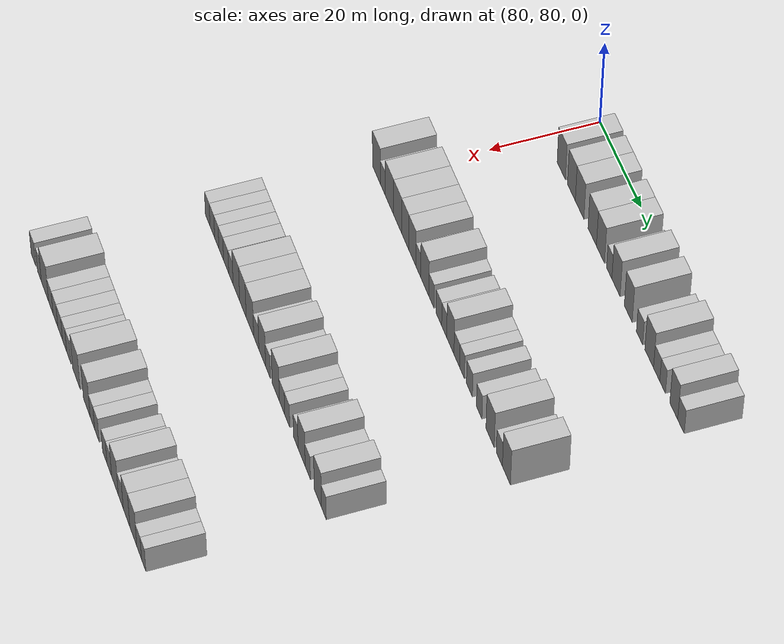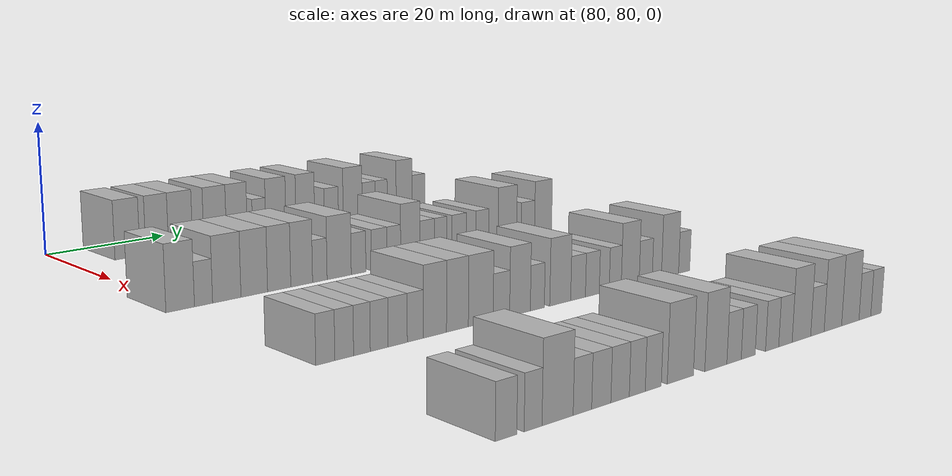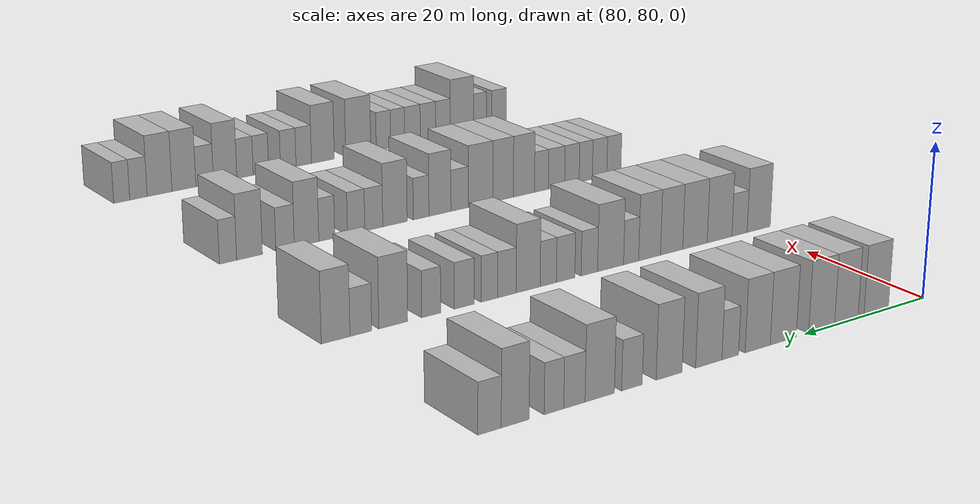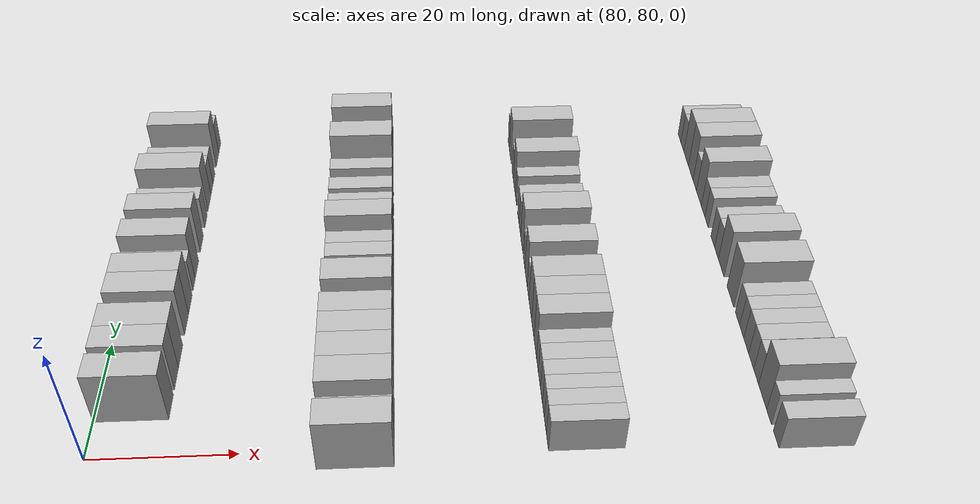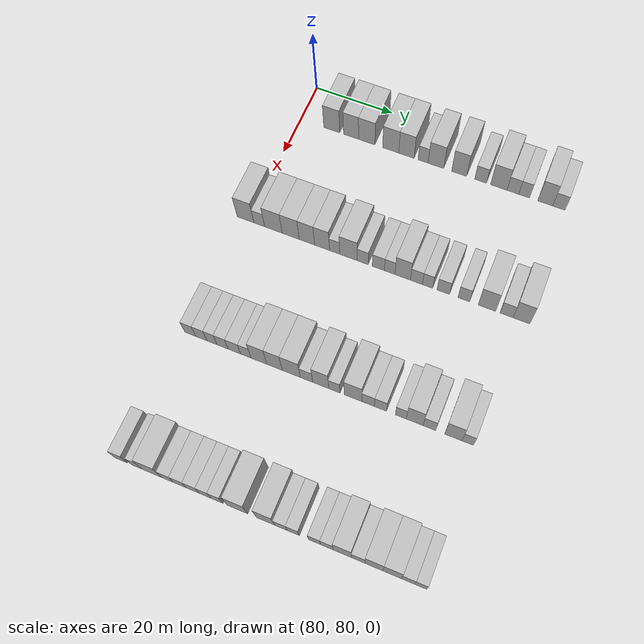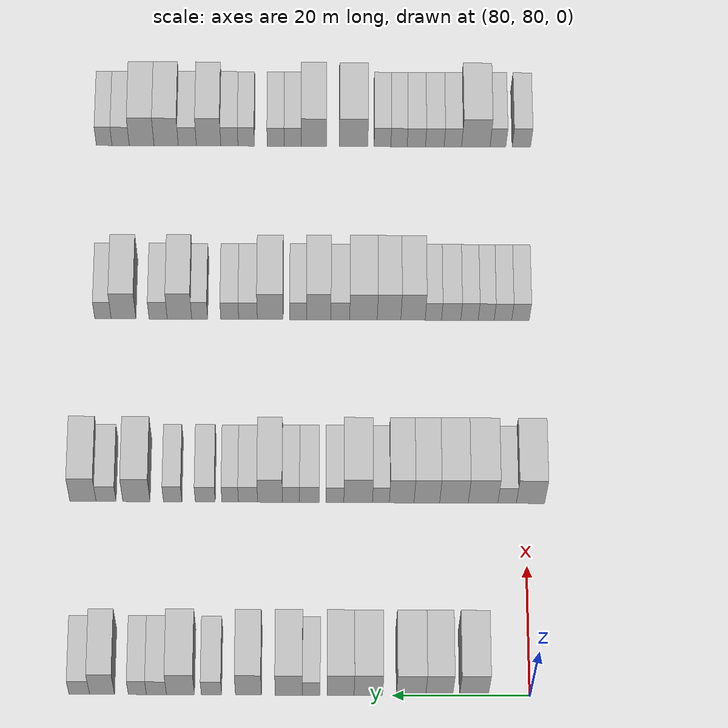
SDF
<sdf version="1.6">
 <world name="default">
  <model name="building_606">
   <static>1</static>
   <pose>85.0000 88.1980 0 0.000000 0.000000 0.000000</pose>
   <link name="link">
    <pose>0 0 4.50 0 0 0</pose>
    <collision name="collision"><geometry><box><size>10.0000 4.1646 9.0000</size></box></geometry></collision>
    <visual name="visual">
     <cast_shadows>0</cast_shadows>
     <geometry><box><size>10.0000 4.1646 9.0000</size></box></geometry>
     <material>
      <script>
       <uri>model://HANNAS_wall/materials/scripts</uri>
       <uri>model://HANNAS_wall/materials/textures</uri>
       <name>vrc/HANNAS_wall</name>
      </script>
     </material>
    </visual>
   </link>
  </model>
  <model name="building_607">
   <static>1</static>
   <pose>85.0000 93.2331 0 0.000000 0.000000 0.000000</pose>
   <link name="link">
    <pose>0 0 4.50 0 0 0</pose>
    <collision name="collision"><geometry><box><size>10.0000 3.9056 9.0000</size></box></geometry></collision>
    <visual name="visual">
     <cast_shadows>0</cast_shadows>
     <geometry><box><size>10.0000 3.9056 9.0000</size></box></geometry>
     <material>
      <script>
       <uri>model://HANNAS_wall/materials/scripts</uri>
       <uri>model://HANNAS_wall/materials/textures</uri>
       <name>vrc/HANNAS_wall</name>
      </script>
     </material>
    </visual>
   </link>
  </model>
  <model name="building_608">
   <static>1</static>
   <pose>85.0000 97.3083 0 0.000000 0.000000 0.000000</pose>
   <link name="link">
    <pose>0 0 4.50 0 0 0</pose>
    <collision name="collision"><geometry><box><size>10.0000 4.2448 9.0000</size></box></geometry></collision>
    <visual name="visual">
     <cast_shadows>0</cast_shadows>
     <geometry><box><size>10.0000 4.2448 9.0000</size></box></geometry>
     <material>
      <script>
       <uri>model://HANNAS_wall/materials/scripts</uri>
       <uri>model://HANNAS_wall/materials/textures</uri>
       <name>vrc/HANNAS_wall</name>
      </script>
     </material>
    </visual>
   </link>
  </model>
  <model name="building_609">
   <static>1</static>
   <pose>85.0000 103.4967 0 0.000000 0.000000 0.000000</pose>
   <link name="link">
    <pose>0 0 4.50 0 0 0</pose>
    <collision name="collision"><geometry><box><size>10.0000 4.1321 9.0000</size></box></geometry></collision>
    <visual name="visual">
     <cast_shadows>0</cast_shadows>
     <geometry><box><size>10.0000 4.1321 9.0000</size></box></geometry>
     <material>
      <script>
       <uri>model://HANNAS_wall/materials/scripts</uri>
       <uri>model://HANNAS_wall/materials/textures</uri>
       <name>vrc/HANNAS_wall</name>
      </script>
     </material>
    </visual>
   </link>
  </model>
  <model name="building_610">
   <static>1</static>
   <pose>85.0000 107.5227 0 0.000000 0.000000 0.000000</pose>
   <link name="link">
    <pose>0 0 4.50 0 0 0</pose>
    <collision name="collision"><geometry><box><size>10.0000 3.9198 9.0000</size></box></geometry></collision>
    <visual name="visual">
     <cast_shadows>0</cast_shadows>
     <geometry><box><size>10.0000 3.9198 9.0000</size></box></geometry>
     <material>
      <script>
       <uri>model://HANNAS_wall/materials/scripts</uri>
       <uri>model://HANNAS_wall/materials/textures</uri>
       <name>vrc/HANNAS_wall</name>
      </script>
     </material>
    </visual>
   </link>
  </model>
  <model name="building_611">
   <static>1</static>
   <pose>85.0000 111.7552 0 0.000000 0.000000 0.000000</pose>
   <link name="link">
    <pose>0 0 3.00 0 0 0</pose>
    <collision name="collision"><geometry><box><size>10.0000 2.5452 6.0000</size></box></geometry></collision>
    <visual name="visual">
     <cast_shadows>0</cast_shadows>
     <geometry><box><size>10.0000 2.5452 6.0000</size></box></geometry>
     <material>
      <script>
       <uri>model://HANNAS_wall/materials/scripts</uri>
       <uri>model://HANNAS_wall/materials/textures</uri>
       <name>vrc/HANNAS_wall</name>
      </script>
     </material>
    </visual>
   </link>
  </model>
  <model name="building_612">
   <static>1</static>
   <pose>85.0000 115.0014 0 0.000000 0.000000 0.000000</pose>
   <link name="link">
    <pose>0 0 4.50 0 0 0</pose>
    <collision name="collision"><geometry><box><size>10.0000 3.9473 9.0000</size></box></geometry></collision>
    <visual name="visual">
     <cast_shadows>0</cast_shadows>
     <geometry><box><size>10.0000 3.9473 9.0000</size></box></geometry>
     <material>
      <script>
       <uri>model://HANNAS_wall/materials/scripts</uri>
       <uri>model://HANNAS_wall/materials/textures</uri>
       <name>vrc/HANNAS_wall</name>
      </script>
     </material>
    </visual>
   </link>
  </model>
  <model name="building_613">
   <static>1</static>
   <pose>85.0000 120.8582 0 0.000000 0.000000 0.000000</pose>
   <link name="link">
    <pose>0 0 4.50 0 0 0</pose>
    <collision name="collision"><geometry><box><size>10.0000 3.7664 9.0000</size></box></geometry></collision>
    <visual name="visual">
     <cast_shadows>0</cast_shadows>
     <geometry><box><size>10.0000 3.7664 9.0000</size></box></geometry>
     <material>
      <script>
       <uri>model://HANNAS_wall/materials/scripts</uri>
       <uri>model://HANNAS_wall/materials/textures</uri>
       <name>vrc/HANNAS_wall</name>
      </script>
     </material>
    </visual>
   </link>
  </model>
  <model name="building_614">
   <static>1</static>
   <pose>85.0000 126.2107 0 0.000000 0.000000 0.000000</pose>
   <link name="link">
    <pose>0 0 3.00 0 0 0</pose>
    <collision name="collision"><geometry><box><size>10.0000 2.9386 6.0000</size></box></geometry></collision>
    <visual name="visual">
     <cast_shadows>0</cast_shadows>
     <geometry><box><size>10.0000 2.9386 6.0000</size></box></geometry>
     <material>
      <script>
       <uri>model://HANNAS_wall/materials/scripts</uri>
       <uri>model://HANNAS_wall/materials/textures</uri>
       <name>vrc/HANNAS_wall</name>
      </script>
     </material>
    </visual>
   </link>
  </model>
  <model name="building_615">
   <static>1</static>
   <pose>85.0000 130.7124 0 0.000000 0.000000 0.000000</pose>
   <link name="link">
    <pose>0 0 4.50 0 0 0</pose>
    <collision name="collision"><geometry><box><size>10.0000 4.0646 9.0000</size></box></geometry></collision>
    <visual name="visual">
     <cast_shadows>0</cast_shadows>
     <geometry><box><size>10.0000 4.0646 9.0000</size></box></geometry>
     <material>
      <script>
       <uri>model://HANNAS_wall/materials/scripts</uri>
       <uri>model://HANNAS_wall/materials/textures</uri>
       <name>vrc/HANNAS_wall</name>
      </script>
     </material>
    </visual>
   </link>
  </model>
  <model name="building_616">
   <static>1</static>
   <pose>85.0000 134.1960 0 0.000000 0.000000 0.000000</pose>
   <link name="link">
    <pose>0 0 3.00 0 0 0</pose>
    <collision name="collision"><geometry><box><size>10.0000 2.9028 6.0000</size></box></geometry></collision>
    <visual name="visual">
     <cast_shadows>0</cast_shadows>
     <geometry><box><size>10.0000 2.9028 6.0000</size></box></geometry>
     <material>
      <script>
       <uri>model://HANNAS_wall/materials/scripts</uri>
       <uri>model://HANNAS_wall/materials/textures</uri>
       <name>vrc/HANNAS_wall</name>
      </script>
     </material>
    </visual>
   </link>
  </model>
  <model name="building_617">
   <static>1</static>
   <pose>85.0000 136.9569 0 0.000000 0.000000 0.000000</pose>
   <link name="link">
    <pose>0 0 3.00 0 0 0</pose>
    <collision name="collision"><geometry><box><size>10.0000 2.6190 6.0000</size></box></geometry></collision>
    <visual name="visual">
     <cast_shadows>0</cast_shadows>
     <geometry><box><size>10.0000 2.6190 6.0000</size></box></geometry>
     <material>
      <script>
       <uri>model://HANNAS_wall/materials/scripts</uri>
       <uri>model://HANNAS_wall/materials/textures</uri>
       <name>vrc/HANNAS_wall</name>
      </script>
     </material>
    </visual>
   </link>
  </model>
  <model name="building_618">
   <static>1</static>
   <pose>85.0000 142.0768 0 0.000000 0.000000 0.000000</pose>
   <link name="link">
    <pose>0 0 4.50 0 0 0</pose>
    <collision name="collision"><geometry><box><size>10.0000 3.6208 9.0000</size></box></geometry></collision>
    <visual name="visual">
     <cast_shadows>0</cast_shadows>
     <geometry><box><size>10.0000 3.6208 9.0000</size></box></geometry>
     <material>
      <script>
       <uri>model://HANNAS_wall/materials/scripts</uri>
       <uri>model://HANNAS_wall/materials/textures</uri>
       <name>vrc/HANNAS_wall</name>
      </script>
     </material>
    </visual>
   </link>
  </model>
  <model name="building_619">
   <static>1</static>
   <pose>85.0000 145.3802 0 0.000000 0.000000 0.000000</pose>
   <link name="link">
    <pose>0 0 3.00 0 0 0</pose>
    <collision name="collision"><geometry><box><size>10.0000 2.9861 6.0000</size></box></geometry></collision>
    <visual name="visual">
     <cast_shadows>0</cast_shadows>
     <geometry><box><size>10.0000 2.9861 6.0000</size></box></geometry>
     <material>
      <script>
       <uri>model://HANNAS_wall/materials/scripts</uri>
       <uri>model://HANNAS_wall/materials/textures</uri>
       <name>vrc/HANNAS_wall</name>
      </script>
     </material>
    </visual>
   </link>
  </model>
  <model name="building_841">
   <static>1</static>
   <pose>115.0000 79.2384 0 0.000000 0.000000 0.000000</pose>
   <link name="link">
    <pose>0 0 4.50 0 0 0</pose>
    <collision name="collision"><geometry><box><size>10.0000 4.2223 9.0000</size></box></geometry></collision>
    <visual name="visual">
     <cast_shadows>0</cast_shadows>
     <geometry><box><size>10.0000 4.2223 9.0000</size></box></geometry>
     <material>
      <script>
       <uri>model://HANNAS_wall/materials/scripts</uri>
       <uri>model://HANNAS_wall/materials/textures</uri>
       <name>vrc/HANNAS_wall</name>
      </script>
     </material>
    </visual>
   </link>
  </model>
  <model name="building_842">
   <static>1</static>
   <pose>115.0000 82.7216 0 0.000000 0.000000 0.000000</pose>
   <link name="link">
    <pose>0 0 3.00 0 0 0</pose>
    <collision name="collision"><geometry><box><size>10.0000 2.7439 6.0000</size></box></geometry></collision>
    <visual name="visual">
     <cast_shadows>0</cast_shadows>
     <geometry><box><size>10.0000 2.7439 6.0000</size></box></geometry>
     <material>
      <script>
       <uri>model://HANNAS_wall/materials/scripts</uri>
       <uri>model://HANNAS_wall/materials/textures</uri>
       <name>vrc/HANNAS_wall</name>
      </script>
     </material>
    </visual>
   </link>
  </model>
  <model name="building_843">
   <static>1</static>
   <pose>115.0000 86.2962 0 0.000000 0.000000 0.000000</pose>
   <link name="link">
    <pose>0 0 4.50 0 0 0</pose>
    <collision name="collision"><geometry><box><size>10.0000 4.4054 9.0000</size></box></geometry></collision>
    <visual name="visual">
     <cast_shadows>0</cast_shadows>
     <geometry><box><size>10.0000 4.4054 9.0000</size></box></geometry>
     <material>
      <script>
       <uri>model://HANNAS_wall/materials/scripts</uri>
       <uri>model://HANNAS_wall/materials/textures</uri>
       <name>vrc/HANNAS_wall</name>
      </script>
     </material>
    </visual>
   </link>
  </model>
  <model name="building_844">
   <static>1</static>
   <pose>115.0000 90.6307 0 0.000000 0.000000 0.000000</pose>
   <link name="link">
    <pose>0 0 4.50 0 0 0</pose>
    <collision name="collision"><geometry><box><size>10.0000 4.2637 9.0000</size></box></geometry></collision>
    <visual name="visual">
     <cast_shadows>0</cast_shadows>
     <geometry><box><size>10.0000 4.2637 9.0000</size></box></geometry>
     <material>
      <script>
       <uri>model://HANNAS_wall/materials/scripts</uri>
       <uri>model://HANNAS_wall/materials/textures</uri>
       <name>vrc/HANNAS_wall</name>
      </script>
     </material>
    </visual>
   </link>
  </model>
  <model name="building_845">
   <static>1</static>
   <pose>115.0000 94.6733 0 0.000000 0.000000 0.000000</pose>
   <link name="link">
    <pose>0 0 4.50 0 0 0</pose>
    <collision name="collision"><geometry><box><size>10.0000 3.8215 9.0000</size></box></geometry></collision>
    <visual name="visual">
     <cast_shadows>0</cast_shadows>
     <geometry><box><size>10.0000 3.8215 9.0000</size></box></geometry>
     <material>
      <script>
       <uri>model://HANNAS_wall/materials/scripts</uri>
       <uri>model://HANNAS_wall/materials/textures</uri>
       <name>vrc/HANNAS_wall</name>
      </script>
     </material>
    </visual>
   </link>
  </model>
  <model name="building_846">
   <static>1</static>
   <pose>115.0000 98.4252 0 0.000000 0.000000 0.000000</pose>
   <link name="link">
    <pose>0 0 4.50 0 0 0</pose>
    <collision name="collision"><geometry><box><size>10.0000 3.6823 9.0000</size></box></geometry></collision>
    <visual name="visual">
     <cast_shadows>0</cast_shadows>
     <geometry><box><size>10.0000 3.6823 9.0000</size></box></geometry>
     <material>
      <script>
       <uri>model://HANNAS_wall/materials/scripts</uri>
       <uri>model://HANNAS_wall/materials/textures</uri>
       <name>vrc/HANNAS_wall</name>
      </script>
     </material>
    </visual>
   </link>
  </model>
  <model name="building_847">
   <static>1</static>
   <pose>115.0000 101.5211 0 0.000000 0.000000 0.000000</pose>
   <link name="link">
    <pose>0 0 3.00 0 0 0</pose>
    <collision name="collision"><geometry><box><size>10.0000 2.5095 6.0000</size></box></geometry></collision>
    <visual name="visual">
     <cast_shadows>0</cast_shadows>
     <geometry><box><size>10.0000 2.5095 6.0000</size></box></geometry>
     <material>
      <script>
       <uri>model://HANNAS_wall/materials/scripts</uri>
       <uri>model://HANNAS_wall/materials/textures</uri>
       <name>vrc/HANNAS_wall</name>
      </script>
     </material>
    </visual>
   </link>
  </model>
  <model name="building_848">
   <static>1</static>
   <pose>115.0000 104.9095 0 0.000000 0.000000 0.000000</pose>
   <link name="link">
    <pose>0 0 4.50 0 0 0</pose>
    <collision name="collision"><geometry><box><size>10.0000 4.2673 9.0000</size></box></geometry></collision>
    <visual name="visual">
     <cast_shadows>0</cast_shadows>
     <geometry><box><size>10.0000 4.2673 9.0000</size></box></geometry>
     <material>
      <script>
       <uri>model://HANNAS_wall/materials/scripts</uri>
       <uri>model://HANNAS_wall/materials/textures</uri>
       <name>vrc/HANNAS_wall</name>
      </script>
     </material>
    </visual>
   </link>
  </model>
  <model name="building_849">
   <static>1</static>
   <pose>115.0000 108.3730 0 0.000000 0.000000 0.000000</pose>
   <link name="link">
    <pose>0 0 3.00 0 0 0</pose>
    <collision name="collision"><geometry><box><size>10.0000 2.6596 6.0000</size></box></geometry></collision>
    <visual name="visual">
     <cast_shadows>0</cast_shadows>
     <geometry><box><size>10.0000 2.6596 6.0000</size></box></geometry>
     <material>
      <script>
       <uri>model://HANNAS_wall/materials/scripts</uri>
       <uri>model://HANNAS_wall/materials/textures</uri>
       <name>vrc/HANNAS_wall</name>
      </script>
     </material>
    </visual>
   </link>
  </model>
  <model name="building_850">
   <static>1</static>
   <pose>115.0000 112.1652 0 0.000000 0.000000 0.000000</pose>
   <link name="link">
    <pose>0 0 3.00 0 0 0</pose>
    <collision name="collision"><geometry><box><size>10.0000 2.9248 6.0000</size></box></geometry></collision>
    <visual name="visual">
     <cast_shadows>0</cast_shadows>
     <geometry><box><size>10.0000 2.9248 6.0000</size></box></geometry>
     <material>
      <script>
       <uri>model://HANNAS_wall/materials/scripts</uri>
       <uri>model://HANNAS_wall/materials/textures</uri>
       <name>vrc/HANNAS_wall</name>
      </script>
     </material>
    </visual>
   </link>
  </model>
  <model name="building_851">
   <static>1</static>
   <pose>115.0000 114.9049 0 0.000000 0.000000 0.000000</pose>
   <link name="link">
    <pose>0 0 3.00 0 0 0</pose>
    <collision name="collision"><geometry><box><size>10.0000 2.5545 6.0000</size></box></geometry></collision>
    <visual name="visual">
     <cast_shadows>0</cast_shadows>
     <geometry><box><size>10.0000 2.5545 6.0000</size></box></geometry>
     <material>
      <script>
       <uri>model://HANNAS_wall/materials/scripts</uri>
       <uri>model://HANNAS_wall/materials/textures</uri>
       <name>vrc/HANNAS_wall</name>
      </script>
     </material>
    </visual>
   </link>
  </model>
  <model name="building_852">
   <static>1</static>
   <pose>115.0000 118.0352 0 0.000000 0.000000 0.000000</pose>
   <link name="link">
    <pose>0 0 4.50 0 0 0</pose>
    <collision name="collision"><geometry><box><size>10.0000 3.7062 9.0000</size></box></geometry></collision>
    <visual name="visual">
     <cast_shadows>0</cast_shadows>
     <geometry><box><size>10.0000 3.7062 9.0000</size></box></geometry>
     <material>
      <script>
       <uri>model://HANNAS_wall/materials/scripts</uri>
       <uri>model://HANNAS_wall/materials/textures</uri>
       <name>vrc/HANNAS_wall</name>
      </script>
     </material>
    </visual>
   </link>
  </model>
  <model name="building_853">
   <static>1</static>
   <pose>115.0000 121.3109 0 0.000000 0.000000 0.000000</pose>
   <link name="link">
    <pose>0 0 3.00 0 0 0</pose>
    <collision name="collision"><geometry><box><size>10.0000 2.8452 6.0000</size></box></geometry></collision>
    <visual name="visual">
     <cast_shadows>0</cast_shadows>
     <geometry><box><size>10.0000 2.8452 6.0000</size></box></geometry>
     <material>
      <script>
       <uri>model://HANNAS_wall/materials/scripts</uri>
       <uri>model://HANNAS_wall/materials/textures</uri>
       <name>vrc/HANNAS_wall</name>
      </script>
     </material>
    </visual>
   </link>
  </model>
  <model name="building_854">
   <static>1</static>
   <pose>115.0000 123.9632 0 0.000000 0.000000 0.000000</pose>
   <link name="link">
    <pose>0 0 3.00 0 0 0</pose>
    <collision name="collision"><geometry><box><size>10.0000 2.4594 6.0000</size></box></geometry></collision>
    <visual name="visual">
     <cast_shadows>0</cast_shadows>
     <geometry><box><size>10.0000 2.4594 6.0000</size></box></geometry>
     <material>
      <script>
       <uri>model://HANNAS_wall/materials/scripts</uri>
       <uri>model://HANNAS_wall/materials/textures</uri>
       <name>vrc/HANNAS_wall</name>
      </script>
     </material>
    </visual>
   </link>
  </model>
  <model name="building_855">
   <static>1</static>
   <pose>115.0000 127.6744 0 0.000000 0.000000 0.000000</pose>
   <link name="link">
    <pose>0 0 3.00 0 0 0</pose>
    <collision name="collision"><geometry><box><size>10.0000 2.9629 6.0000</size></box></geometry></collision>
    <visual name="visual">
     <cast_shadows>0</cast_shadows>
     <geometry><box><size>10.0000 2.9629 6.0000</size></box></geometry>
     <material>
      <script>
       <uri>model://HANNAS_wall/materials/scripts</uri>
       <uri>model://HANNAS_wall/materials/textures</uri>
       <name>vrc/HANNAS_wall</name>
      </script>
     </material>
    </visual>
   </link>
  </model>
  <model name="building_856">
   <static>1</static>
   <pose>115.0000 132.5275 0 0.000000 0.000000 0.000000</pose>
   <link name="link">
    <pose>0 0 3.00 0 0 0</pose>
    <collision name="collision"><geometry><box><size>10.0000 2.7433 6.0000</size></box></geometry></collision>
    <visual name="visual">
     <cast_shadows>0</cast_shadows>
     <geometry><box><size>10.0000 2.7433 6.0000</size></box></geometry>
     <material>
      <script>
       <uri>model://HANNAS_wall/materials/scripts</uri>
       <uri>model://HANNAS_wall/materials/textures</uri>
       <name>vrc/HANNAS_wall</name>
      </script>
     </material>
    </visual>
   </link>
  </model>
  <model name="building_857">
   <static>1</static>
   <pose>115.0000 137.9291 0 0.000000 0.000000 0.000000</pose>
   <link name="link">
    <pose>0 0 4.50 0 0 0</pose>
    <collision name="collision"><geometry><box><size>10.0000 4.0598 9.0000</size></box></geometry></collision>
    <visual name="visual">
     <cast_shadows>0</cast_shadows>
     <geometry><box><size>10.0000 4.0598 9.0000</size></box></geometry>
     <material>
      <script>
       <uri>model://HANNAS_wall/materials/scripts</uri>
       <uri>model://HANNAS_wall/materials/textures</uri>
       <name>vrc/HANNAS_wall</name>
      </script>
     </material>
    </visual>
   </link>
  </model>
  <model name="building_858">
   <static>1</static>
   <pose>115.0000 142.4540 0 0.000000 0.000000 0.000000</pose>
   <link name="link">
    <pose>0 0 3.00 0 0 0</pose>
    <collision name="collision"><geometry><box><size>10.0000 2.9899 6.0000</size></box></geometry></collision>
    <visual name="visual">
     <cast_shadows>0</cast_shadows>
     <geometry><box><size>10.0000 2.9899 6.0000</size></box></geometry>
     <material>
      <script>
       <uri>model://HANNAS_wall/materials/scripts</uri>
       <uri>model://HANNAS_wall/materials/textures</uri>
       <name>vrc/HANNAS_wall</name>
      </script>
     </material>
    </visual>
   </link>
  </model>
  <model name="building_859">
   <static>1</static>
   <pose>115.0000 145.8974 0 0.000000 0.000000 0.000000</pose>
   <link name="link">
    <pose>0 0 4.50 0 0 0</pose>
    <collision name="collision"><geometry><box><size>10.0000 3.8968 9.0000</size></box></geometry></collision>
    <visual name="visual">
     <cast_shadows>0</cast_shadows>
     <geometry><box><size>10.0000 3.8968 9.0000</size></box></geometry>
     <material>
      <script>
       <uri>model://HANNAS_wall/materials/scripts</uri>
       <uri>model://HANNAS_wall/materials/textures</uri>
       <name>vrc/HANNAS_wall</name>
      </script>
     </material>
    </visual>
   </link>
  </model>
  <model name="building_1061">
   <static>1</static>
   <pose>145.0000 80.0129 0 0.000000 0.000000 0.000000</pose>
   <link name="link">
    <pose>0 0 3.00 0 0 0</pose>
    <collision name="collision"><geometry><box><size>10.0000 2.6777 6.0000</size></box></geometry></collision>
    <visual name="visual">
     <cast_shadows>0</cast_shadows>
     <geometry><box><size>10.0000 2.6777 6.0000</size></box></geometry>
     <material>
      <script>
       <uri>model://HANNAS_wall/materials/scripts</uri>
       <uri>model://HANNAS_wall/materials/textures</uri>
       <name>vrc/HANNAS_wall</name>
      </script>
     </material>
    </visual>
   </link>
  </model>
  <model name="building_1062">
   <static>1</static>
   <pose>145.0000 82.6959 0 0.000000 0.000000 0.000000</pose>
   <link name="link">
    <pose>0 0 3.00 0 0 0</pose>
    <collision name="collision"><geometry><box><size>10.0000 2.6882 6.0000</size></box></geometry></collision>
    <visual name="visual">
     <cast_shadows>0</cast_shadows>
     <geometry><box><size>10.0000 2.6882 6.0000</size></box></geometry>
     <material>
      <script>
       <uri>model://HANNAS_wall/materials/scripts</uri>
       <uri>model://HANNAS_wall/materials/textures</uri>
       <name>vrc/HANNAS_wall</name>
      </script>
     </material>
    </visual>
   </link>
  </model>
  <model name="building_1063">
   <static>1</static>
   <pose>145.0000 85.2631 0 0.000000 0.000000 0.000000</pose>
   <link name="link">
    <pose>0 0 3.00 0 0 0</pose>
    <collision name="collision"><geometry><box><size>10.0000 2.4461 6.0000</size></box></geometry></collision>
    <visual name="visual">
     <cast_shadows>0</cast_shadows>
     <geometry><box><size>10.0000 2.4461 6.0000</size></box></geometry>
     <material>
      <script>
       <uri>model://HANNAS_wall/materials/scripts</uri>
       <uri>model://HANNAS_wall/materials/textures</uri>
       <name>vrc/HANNAS_wall</name>
      </script>
     </material>
    </visual>
   </link>
  </model>
  <model name="building_1064">
   <static>1</static>
   <pose>145.0000 87.8165 0 0.000000 0.000000 0.000000</pose>
   <link name="link">
    <pose>0 0 3.00 0 0 0</pose>
    <collision name="collision"><geometry><box><size>10.0000 2.6606 6.0000</size></box></geometry></collision>
    <visual name="visual">
     <cast_shadows>0</cast_shadows>
     <geometry><box><size>10.0000 2.6606 6.0000</size></box></geometry>
     <material>
      <script>
       <uri>model://HANNAS_wall/materials/scripts</uri>
       <uri>model://HANNAS_wall/materials/textures</uri>
       <name>vrc/HANNAS_wall</name>
      </script>
     </material>
    </visual>
   </link>
  </model>
  <model name="building_1065">
   <static>1</static>
   <pose>145.0000 90.6202 0 0.000000 0.000000 0.000000</pose>
   <link name="link">
    <pose>0 0 3.00 0 0 0</pose>
    <collision name="collision"><geometry><box><size>10.0000 2.9469 6.0000</size></box></geometry></collision>
    <visual name="visual">
     <cast_shadows>0</cast_shadows>
     <geometry><box><size>10.0000 2.9469 6.0000</size></box></geometry>
     <material>
      <script>
       <uri>model://HANNAS_wall/materials/scripts</uri>
       <uri>model://HANNAS_wall/materials/textures</uri>
       <name>vrc/HANNAS_wall</name>
      </script>
     </material>
    </visual>
   </link>
  </model>
  <model name="building_1066">
   <static>1</static>
   <pose>145.0000 93.3429 0 0.000000 0.000000 0.000000</pose>
   <link name="link">
    <pose>0 0 3.00 0 0 0</pose>
    <collision name="collision"><geometry><box><size>10.0000 2.4986 6.0000</size></box></geometry></collision>
    <visual name="visual">
     <cast_shadows>0</cast_shadows>
     <geometry><box><size>10.0000 2.4986 6.0000</size></box></geometry>
     <material>
      <script>
       <uri>model://HANNAS_wall/materials/scripts</uri>
       <uri>model://HANNAS_wall/materials/textures</uri>
       <name>vrc/HANNAS_wall</name>
      </script>
     </material>
    </visual>
   </link>
  </model>
  <model name="building_1067">
   <static>1</static>
   <pose>145.0000 96.4584 0 0.000000 0.000000 0.000000</pose>
   <link name="link">
    <pose>0 0 4.50 0 0 0</pose>
    <collision name="collision"><geometry><box><size>10.0000 3.7324 9.0000</size></box></geometry></collision>
    <visual name="visual">
     <cast_shadows>0</cast_shadows>
     <geometry><box><size>10.0000 3.7324 9.0000</size></box></geometry>
     <material>
      <script>
       <uri>model://HANNAS_wall/materials/scripts</uri>
       <uri>model://HANNAS_wall/materials/textures</uri>
       <name>vrc/HANNAS_wall</name>
      </script>
     </material>
    </visual>
   </link>
  </model>
  <model name="building_1068">
   <static>1</static>
   <pose>145.0000 100.1294 0 0.000000 0.000000 0.000000</pose>
   <link name="link">
    <pose>0 0 4.50 0 0 0</pose>
    <collision name="collision"><geometry><box><size>10.0000 3.6094 9.0000</size></box></geometry></collision>
    <visual name="visual">
     <cast_shadows>0</cast_shadows>
     <geometry><box><size>10.0000 3.6094 9.0000</size></box></geometry>
     <material>
      <script>
       <uri>model://HANNAS_wall/materials/scripts</uri>
       <uri>model://HANNAS_wall/materials/textures</uri>
       <name>vrc/HANNAS_wall</name>
      </script>
     </material>
    </visual>
   </link>
  </model>
  <model name="building_1069">
   <static>1</static>
   <pose>145.0000 104.0443 0 0.000000 0.000000 0.000000</pose>
   <link name="link">
    <pose>0 0 4.50 0 0 0</pose>
    <collision name="collision"><geometry><box><size>10.0000 4.2204 9.0000</size></box></geometry></collision>
    <visual name="visual">
     <cast_shadows>0</cast_shadows>
     <geometry><box><size>10.0000 4.2204 9.0000</size></box></geometry>
     <material>
      <script>
       <uri>model://HANNAS_wall/materials/scripts</uri>
       <uri>model://HANNAS_wall/materials/textures</uri>
       <name>vrc/HANNAS_wall</name>
      </script>
     </material>
    </visual>
   </link>
  </model>
  <model name="building_1070">
   <static>1</static>
   <pose>145.0000 107.5937 0 0.000000 0.000000 0.000000</pose>
   <link name="link">
    <pose>0 0 3.00 0 0 0</pose>
    <collision name="collision"><geometry><box><size>10.0000 2.8786 6.0000</size></box></geometry></collision>
    <visual name="visual">
     <cast_shadows>0</cast_shadows>
     <geometry><box><size>10.0000 2.8786 6.0000</size></box></geometry>
     <material>
      <script>
       <uri>model://HANNAS_wall/materials/scripts</uri>
       <uri>model://HANNAS_wall/materials/textures</uri>
       <name>vrc/HANNAS_wall</name>
      </script>
     </material>
    </visual>
   </link>
  </model>
  <model name="building_1071">
   <static>1</static>
   <pose>145.0000 110.8858 0 0.000000 0.000000 0.000000</pose>
   <link name="link">
    <pose>0 0 4.50 0 0 0</pose>
    <collision name="collision"><geometry><box><size>10.0000 3.7054 9.0000</size></box></geometry></collision>
    <visual name="visual">
     <cast_shadows>0</cast_shadows>
     <geometry><box><size>10.0000 3.7054 9.0000</size></box></geometry>
     <material>
      <script>
       <uri>model://HANNAS_wall/materials/scripts</uri>
       <uri>model://HANNAS_wall/materials/textures</uri>
       <name>vrc/HANNAS_wall</name>
      </script>
     </material>
    </visual>
   </link>
  </model>
  <model name="building_1072">
   <static>1</static>
   <pose>145.0000 114.0240 0 0.000000 0.000000 0.000000</pose>
   <link name="link">
    <pose>0 0 3.00 0 0 0</pose>
    <collision name="collision"><geometry><box><size>10.0000 2.5712 6.0000</size></box></geometry></collision>
    <visual name="visual">
     <cast_shadows>0</cast_shadows>
     <geometry><box><size>10.0000 2.5712 6.0000</size></box></geometry>
     <material>
      <script>
       <uri>model://HANNAS_wall/materials/scripts</uri>
       <uri>model://HANNAS_wall/materials/textures</uri>
       <name>vrc/HANNAS_wall</name>
      </script>
     </material>
    </visual>
   </link>
  </model>
  <model name="building_1073">
   <static>1</static>
   <pose>145.0000 118.2888 0 0.000000 0.000000 0.000000</pose>
   <link name="link">
    <pose>0 0 4.50 0 0 0</pose>
    <collision name="collision"><geometry><box><size>10.0000 3.9583 9.0000</size></box></geometry></collision>
    <visual name="visual">
     <cast_shadows>0</cast_shadows>
     <geometry><box><size>10.0000 3.9583 9.0000</size></box></geometry>
     <material>
      <script>
       <uri>model://HANNAS_wall/materials/scripts</uri>
       <uri>model://HANNAS_wall/materials/textures</uri>
       <name>vrc/HANNAS_wall</name>
      </script>
     </material>
    </visual>
   </link>
  </model>
  <model name="building_1074">
   <static>1</static>
   <pose>145.0000 121.6977 0 0.000000 0.000000 0.000000</pose>
   <link name="link">
    <pose>0 0 3.00 0 0 0</pose>
    <collision name="collision"><geometry><box><size>10.0000 2.8597 6.0000</size></box></geometry></collision>
    <visual name="visual">
     <cast_shadows>0</cast_shadows>
     <geometry><box><size>10.0000 2.8597 6.0000</size></box></geometry>
     <material>
      <script>
       <uri>model://HANNAS_wall/materials/scripts</uri>
       <uri>model://HANNAS_wall/materials/textures</uri>
       <name>vrc/HANNAS_wall</name>
      </script>
     </material>
    </visual>
   </link>
  </model>
  <model name="building_1075">
   <static>1</static>
   <pose>145.0000 124.4946 0 0.000000 0.000000 0.000000</pose>
   <link name="link">
    <pose>0 0 3.00 0 0 0</pose>
    <collision name="collision"><geometry><box><size>10.0000 2.7340 6.0000</size></box></geometry></collision>
    <visual name="visual">
     <cast_shadows>0</cast_shadows>
     <geometry><box><size>10.0000 2.7340 6.0000</size></box></geometry>
     <material>
      <script>
       <uri>model://HANNAS_wall/materials/scripts</uri>
       <uri>model://HANNAS_wall/materials/textures</uri>
       <name>vrc/HANNAS_wall</name>
      </script>
     </material>
    </visual>
   </link>
  </model>
  <model name="building_1076">
   <static>1</static>
   <pose>145.0000 129.0873 0 0.000000 0.000000 0.000000</pose>
   <link name="link">
    <pose>0 0 3.00 0 0 0</pose>
    <collision name="collision"><geometry><box><size>10.0000 2.4513 6.0000</size></box></geometry></collision>
    <visual name="visual">
     <cast_shadows>0</cast_shadows>
     <geometry><box><size>10.0000 2.4513 6.0000</size></box></geometry>
     <material>
      <script>
       <uri>model://HANNAS_wall/materials/scripts</uri>
       <uri>model://HANNAS_wall/materials/textures</uri>
       <name>vrc/HANNAS_wall</name>
      </script>
     </material>
    </visual>
   </link>
  </model>
  <model name="building_1077">
   <static>1</static>
   <pose>145.0000 132.1859 0 0.000000 0.000000 0.000000</pose>
   <link name="link">
    <pose>0 0 4.50 0 0 0</pose>
    <collision name="collision"><geometry><box><size>10.0000 3.7460 9.0000</size></box></geometry></collision>
    <visual name="visual">
     <cast_shadows>0</cast_shadows>
     <geometry><box><size>10.0000 3.7460 9.0000</size></box></geometry>
     <material>
      <script>
       <uri>model://HANNAS_wall/materials/scripts</uri>
       <uri>model://HANNAS_wall/materials/textures</uri>
       <name>vrc/HANNAS_wall</name>
      </script>
     </material>
    </visual>
   </link>
  </model>
  <model name="building_1078">
   <static>1</static>
   <pose>145.0000 135.4502 0 0.000000 0.000000 0.000000</pose>
   <link name="link">
    <pose>0 0 3.00 0 0 0</pose>
    <collision name="collision"><geometry><box><size>10.0000 2.7826 6.0000</size></box></geometry></collision>
    <visual name="visual">
     <cast_shadows>0</cast_shadows>
     <geometry><box><size>10.0000 2.7826 6.0000</size></box></geometry>
     <material>
      <script>
       <uri>model://HANNAS_wall/materials/scripts</uri>
       <uri>model://HANNAS_wall/materials/textures</uri>
       <name>vrc/HANNAS_wall</name>
      </script>
     </material>
    </visual>
   </link>
  </model>
  <model name="building_1079">
   <static>1</static>
   <pose>145.0000 140.7384 0 0.000000 0.000000 0.000000</pose>
   <link name="link">
    <pose>0 0 4.50 0 0 0</pose>
    <collision name="collision"><geometry><box><size>10.0000 3.7938 9.0000</size></box></geometry></collision>
    <visual name="visual">
     <cast_shadows>0</cast_shadows>
     <geometry><box><size>10.0000 3.7938 9.0000</size></box></geometry>
     <material>
      <script>
       <uri>model://HANNAS_wall/materials/scripts</uri>
       <uri>model://HANNAS_wall/materials/textures</uri>
       <name>vrc/HANNAS_wall</name>
      </script>
     </material>
    </visual>
   </link>
  </model>
  <model name="building_1080">
   <static>1</static>
   <pose>145.0000 143.8917 0 0.000000 0.000000 0.000000</pose>
   <link name="link">
    <pose>0 0 3.00 0 0 0</pose>
    <collision name="collision"><geometry><box><size>10.0000 2.5127 6.0000</size></box></geometry></collision>
    <visual name="visual">
     <cast_shadows>0</cast_shadows>
     <geometry><box><size>10.0000 2.5127 6.0000</size></box></geometry>
     <material>
      <script>
       <uri>model://HANNAS_wall/materials/scripts</uri>
       <uri>model://HANNAS_wall/materials/textures</uri>
       <name>vrc/HANNAS_wall</name>
      </script>
     </material>
    </visual>
   </link>
  </model>
  <model name="building_1276">
   <static>1</static>
   <pose>175.0000 79.1565 0 0.000000 0.000000 0.000000</pose>
   <link name="link">
    <pose>0 0 3.00 0 0 0</pose>
    <collision name="collision"><geometry><box><size>10.0000 2.8816 6.0000</size></box></geometry></collision>
    <visual name="visual">
     <cast_shadows>0</cast_shadows>
     <geometry><box><size>10.0000 2.8816 6.0000</size></box></geometry>
     <material>
      <script>
       <uri>model://HANNAS_wall/materials/scripts</uri>
       <uri>model://HANNAS_wall/materials/textures</uri>
       <name>vrc/HANNAS_wall</name>
      </script>
     </material>
    </visual>
   </link>
  </model>
  <model name="building_1277">
   <static>1</static>
   <pose>175.0000 82.8370 0 0.000000 0.000000 0.000000</pose>
   <link name="link">
    <pose>0 0 3.00 0 0 0</pose>
    <collision name="collision"><geometry><box><size>10.0000 2.4794 6.0000</size></box></geometry></collision>
    <visual name="visual">
     <cast_shadows>0</cast_shadows>
     <geometry><box><size>10.0000 2.4794 6.0000</size></box></geometry>
     <material>
      <script>
       <uri>model://HANNAS_wall/materials/scripts</uri>
       <uri>model://HANNAS_wall/materials/textures</uri>
       <name>vrc/HANNAS_wall</name>
      </script>
     </material>
    </visual>
   </link>
  </model>
  <model name="building_1278">
   <static>1</static>
   <pose>175.0000 86.3112 0 0.000000 0.000000 0.000000</pose>
   <link name="link">
    <pose>0 0 4.50 0 0 0</pose>
    <collision name="collision"><geometry><box><size>10.0000 4.4689 9.0000</size></box></geometry></collision>
    <visual name="visual">
     <cast_shadows>0</cast_shadows>
     <geometry><box><size>10.0000 4.4689 9.0000</size></box></geometry>
     <material>
      <script>
       <uri>model://HANNAS_wall/materials/scripts</uri>
       <uri>model://HANNAS_wall/materials/textures</uri>
       <name>vrc/HANNAS_wall</name>
      </script>
     </material>
    </visual>
   </link>
  </model>
  <model name="building_1279">
   <static>1</static>
   <pose>175.0000 89.9215 0 0.000000 0.000000 0.000000</pose>
   <link name="link">
    <pose>0 0 3.00 0 0 0</pose>
    <collision name="collision"><geometry><box><size>10.0000 2.7517 6.0000</size></box></geometry></collision>
    <visual name="visual">
     <cast_shadows>0</cast_shadows>
     <geometry><box><size>10.0000 2.7517 6.0000</size></box></geometry>
     <material>
      <script>
       <uri>model://HANNAS_wall/materials/scripts</uri>
       <uri>model://HANNAS_wall/materials/textures</uri>
       <name>vrc/HANNAS_wall</name>
      </script>
     </material>
    </visual>
   </link>
  </model>
  <model name="building_1280">
   <static>1</static>
   <pose>175.0000 92.7603 0 0.000000 0.000000 0.000000</pose>
   <link name="link">
    <pose>0 0 3.00 0 0 0</pose>
    <collision name="collision"><geometry><box><size>10.0000 2.9260 6.0000</size></box></geometry></collision>
    <visual name="visual">
     <cast_shadows>0</cast_shadows>
     <geometry><box><size>10.0000 2.9260 6.0000</size></box></geometry>
     <material>
      <script>
       <uri>model://HANNAS_wall/materials/scripts</uri>
       <uri>model://HANNAS_wall/materials/textures</uri>
       <name>vrc/HANNAS_wall</name>
      </script>
     </material>
    </visual>
   </link>
  </model>
  <model name="building_1281">
   <static>1</static>
   <pose>175.0000 95.6622 0 0.000000 0.000000 0.000000</pose>
   <link name="link">
    <pose>0 0 3.00 0 0 0</pose>
    <collision name="collision"><geometry><box><size>10.0000 2.8778 6.0000</size></box></geometry></collision>
    <visual name="visual">
     <cast_shadows>0</cast_shadows>
     <geometry><box><size>10.0000 2.8778 6.0000</size></box></geometry>
     <material>
      <script>
       <uri>model://HANNAS_wall/materials/scripts</uri>
       <uri>model://HANNAS_wall/materials/textures</uri>
       <name>vrc/HANNAS_wall</name>
      </script>
     </material>
    </visual>
   </link>
  </model>
  <model name="building_1282">
   <static>1</static>
   <pose>175.0000 98.3823 0 0.000000 0.000000 0.000000</pose>
   <link name="link">
    <pose>0 0 3.00 0 0 0</pose>
    <collision name="collision"><geometry><box><size>10.0000 2.5625 6.0000</size></box></geometry></collision>
    <visual name="visual">
     <cast_shadows>0</cast_shadows>
     <geometry><box><size>10.0000 2.5625 6.0000</size></box></geometry>
     <material>
      <script>
       <uri>model://HANNAS_wall/materials/scripts</uri>
       <uri>model://HANNAS_wall/materials/textures</uri>
       <name>vrc/HANNAS_wall</name>
      </script>
     </material>
    </visual>
   </link>
  </model>
  <model name="building_1283">
   <static>1</static>
   <pose>175.0000 100.9790 0 0.000000 0.000000 0.000000</pose>
   <link name="link">
    <pose>0 0 3.00 0 0 0</pose>
    <collision name="collision"><geometry><box><size>10.0000 2.6308 6.0000</size></box></geometry></collision>
    <visual name="visual">
     <cast_shadows>0</cast_shadows>
     <geometry><box><size>10.0000 2.6308 6.0000</size></box></geometry>
     <material>
      <script>
       <uri>model://HANNAS_wall/materials/scripts</uri>
       <uri>model://HANNAS_wall/materials/textures</uri>
       <name>vrc/HANNAS_wall</name>
      </script>
     </material>
    </visual>
   </link>
  </model>
  <model name="building_1284">
   <static>1</static>
   <pose>175.0000 105.5309 0 0.000000 0.000000 0.000000</pose>
   <link name="link">
    <pose>0 0 4.50 0 0 0</pose>
    <collision name="collision"><geometry><box><size>10.0000 4.4731 9.0000</size></box></geometry></collision>
    <visual name="visual">
     <cast_shadows>0</cast_shadows>
     <geometry><box><size>10.0000 4.4731 9.0000</size></box></geometry>
     <material>
      <script>
       <uri>model://HANNAS_wall/materials/scripts</uri>
       <uri>model://HANNAS_wall/materials/textures</uri>
       <name>vrc/HANNAS_wall</name>
      </script>
     </material>
    </visual>
   </link>
  </model>
  <model name="building_1285">
   <static>1</static>
   <pose>175.0000 111.7578 0 0.000000 0.000000 0.000000</pose>
   <link name="link">
    <pose>0 0 4.50 0 0 0</pose>
    <collision name="collision"><geometry><box><size>10.0000 3.9807 9.0000</size></box></geometry></collision>
    <visual name="visual">
     <cast_shadows>0</cast_shadows>
     <geometry><box><size>10.0000 3.9807 9.0000</size></box></geometry>
     <material>
      <script>
       <uri>model://HANNAS_wall/materials/scripts</uri>
       <uri>model://HANNAS_wall/materials/textures</uri>
       <name>vrc/HANNAS_wall</name>
      </script>
     </material>
    </visual>
   </link>
  </model>
  <model name="building_1286">
   <static>1</static>
   <pose>175.0000 115.0787 0 0.000000 0.000000 0.000000</pose>
   <link name="link">
    <pose>0 0 3.00 0 0 0</pose>
    <collision name="collision"><geometry><box><size>10.0000 2.6610 6.0000</size></box></geometry></collision>
    <visual name="visual">
     <cast_shadows>0</cast_shadows>
     <geometry><box><size>10.0000 2.6610 6.0000</size></box></geometry>
     <material>
      <script>
       <uri>model://HANNAS_wall/materials/scripts</uri>
       <uri>model://HANNAS_wall/materials/textures</uri>
       <name>vrc/HANNAS_wall</name>
      </script>
     </material>
    </visual>
   </link>
  </model>
  <model name="building_1287">
   <static>1</static>
   <pose>175.0000 117.7340 0 0.000000 0.000000 0.000000</pose>
   <link name="link">
    <pose>0 0 3.00 0 0 0</pose>
    <collision name="collision"><geometry><box><size>10.0000 2.6496 6.0000</size></box></geometry></collision>
    <visual name="visual">
     <cast_shadows>0</cast_shadows>
     <geometry><box><size>10.0000 2.6496 6.0000</size></box></geometry>
     <material>
      <script>
       <uri>model://HANNAS_wall/materials/scripts</uri>
       <uri>model://HANNAS_wall/materials/textures</uri>
       <name>vrc/HANNAS_wall</name>
      </script>
     </material>
    </visual>
   </link>
  </model>
  <model name="building_1288">
   <static>1</static>
   <pose>175.0000 122.3582 0 0.000000 0.000000 0.000000</pose>
   <link name="link">
    <pose>0 0 3.00 0 0 0</pose>
    <collision name="collision"><geometry><box><size>10.0000 2.5987 6.0000</size></box></geometry></collision>
    <visual name="visual">
     <cast_shadows>0</cast_shadows>
     <geometry><box><size>10.0000 2.5987 6.0000</size></box></geometry>
     <material>
      <script>
       <uri>model://HANNAS_wall/materials/scripts</uri>
       <uri>model://HANNAS_wall/materials/textures</uri>
       <name>vrc/HANNAS_wall</name>
      </script>
     </material>
    </visual>
   </link>
  </model>
  <model name="building_1289">
   <static>1</static>
   <pose>175.0000 125.0062 0 0.000000 0.000000 0.000000</pose>
   <link name="link">
    <pose>0 0 3.00 0 0 0</pose>
    <collision name="collision"><geometry><box><size>10.0000 2.6972 6.0000</size></box></geometry></collision>
    <visual name="visual">
     <cast_shadows>0</cast_shadows>
     <geometry><box><size>10.0000 2.6972 6.0000</size></box></geometry>
     <material>
      <script>
       <uri>model://HANNAS_wall/materials/scripts</uri>
       <uri>model://HANNAS_wall/materials/textures</uri>
       <name>vrc/HANNAS_wall</name>
      </script>
     </material>
    </visual>
   </link>
  </model>
  <model name="building_1290">
   <static>1</static>
   <pose>175.0000 128.2738 0 0.000000 0.000000 0.000000</pose>
   <link name="link">
    <pose>0 0 4.50 0 0 0</pose>
    <collision name="collision"><geometry><box><size>10.0000 3.8381 9.0000</size></box></geometry></collision>
    <visual name="visual">
     <cast_shadows>0</cast_shadows>
     <geometry><box><size>10.0000 3.8381 9.0000</size></box></geometry>
     <material>
      <script>
       <uri>model://HANNAS_wall/materials/scripts</uri>
       <uri>model://HANNAS_wall/materials/textures</uri>
       <name>vrc/HANNAS_wall</name>
      </script>
     </material>
    </visual>
   </link>
  </model>
  <model name="building_1291">
   <static>1</static>
   <pose>175.0000 131.6135 0 0.000000 0.000000 0.000000</pose>
   <link name="link">
    <pose>0 0 3.00 0 0 0</pose>
    <collision name="collision"><geometry><box><size>10.0000 2.8412 6.0000</size></box></geometry></collision>
    <visual name="visual">
     <cast_shadows>0</cast_shadows>
     <geometry><box><size>10.0000 2.8412 6.0000</size></box></geometry>
     <material>
      <script>
       <uri>model://HANNAS_wall/materials/scripts</uri>
       <uri>model://HANNAS_wall/materials/textures</uri>
       <name>vrc/HANNAS_wall</name>
      </script>
     </material>
    </visual>
   </link>
  </model>
  <model name="building_1292">
   <static>1</static>
   <pose>175.0000 134.9384 0 0.000000 0.000000 0.000000</pose>
   <link name="link">
    <pose>0 0 4.50 0 0 0</pose>
    <collision name="collision"><geometry><box><size>10.0000 3.8086 9.0000</size></box></geometry></collision>
    <visual name="visual">
     <cast_shadows>0</cast_shadows>
     <geometry><box><size>10.0000 3.8086 9.0000</size></box></geometry>
     <material>
      <script>
       <uri>model://HANNAS_wall/materials/scripts</uri>
       <uri>model://HANNAS_wall/materials/textures</uri>
       <name>vrc/HANNAS_wall</name>
      </script>
     </material>
    </visual>
   </link>
  </model>
  <model name="building_1293">
   <static>1</static>
   <pose>175.0000 138.7914 0 0.000000 0.000000 0.000000</pose>
   <link name="link">
    <pose>0 0 4.50 0 0 0</pose>
    <collision name="collision"><geometry><box><size>10.0000 3.8974 9.0000</size></box></geometry></collision>
    <visual name="visual">
     <cast_shadows>0</cast_shadows>
     <geometry><box><size>10.0000 3.8974 9.0000</size></box></geometry>
     <material>
      <script>
       <uri>model://HANNAS_wall/materials/scripts</uri>
       <uri>model://HANNAS_wall/materials/textures</uri>
       <name>vrc/HANNAS_wall</name>
      </script>
     </material>
    </visual>
   </link>
  </model>
  <model name="building_1294">
   <static>1</static>
   <pose>175.0000 142.0922 0 0.000000 0.000000 0.000000</pose>
   <link name="link">
    <pose>0 0 3.00 0 0 0</pose>
    <collision name="collision"><geometry><box><size>10.0000 2.7041 6.0000</size></box></geometry></collision>
    <visual name="visual">
     <cast_shadows>0</cast_shadows>
     <geometry><box><size>10.0000 2.7041 6.0000</size></box></geometry>
     <material>
      <script>
       <uri>model://HANNAS_wall/materials/scripts</uri>
       <uri>model://HANNAS_wall/materials/textures</uri>
       <name>vrc/HANNAS_wall</name>
      </script>
     </material>
    </visual>
   </link>
  </model>
  <model name="building_1295">
   <static>1</static>
   <pose>175.0000 144.6725 0 0.000000 0.000000 0.000000</pose>
   <link name="link">
    <pose>0 0 3.00 0 0 0</pose>
    <collision name="collision"><geometry><box><size>10.0000 2.4564 6.0000</size></box></geometry></collision>
    <visual name="visual">
     <cast_shadows>0</cast_shadows>
     <geometry><box><size>10.0000 2.4564 6.0000</size></box></geometry>
     <material>
      <script>
       <uri>model://HANNAS_wall/materials/scripts</uri>
       <uri>model://HANNAS_wall/materials/textures</uri>
       <name>vrc/HANNAS_wall</name>
      </script>
     </material>
    </visual>
   </link>
  </model>
 </world>
</sdf>
